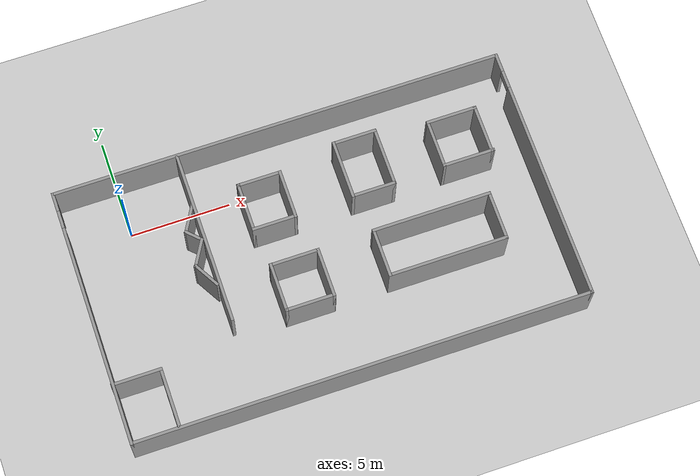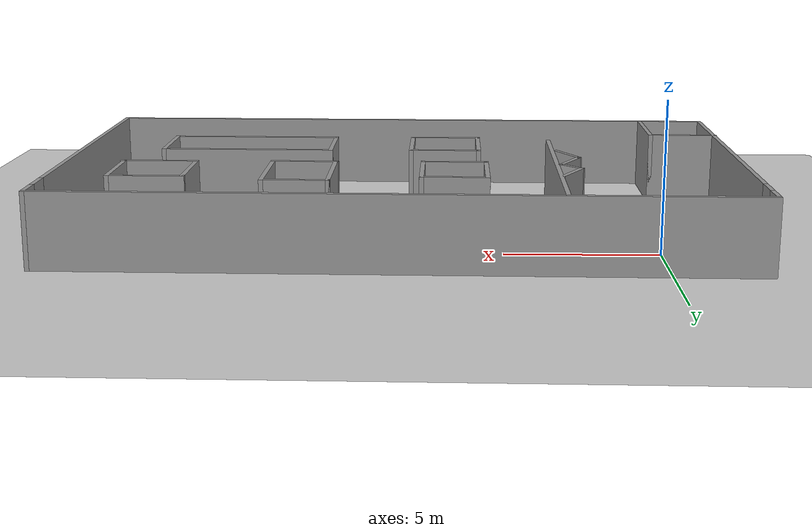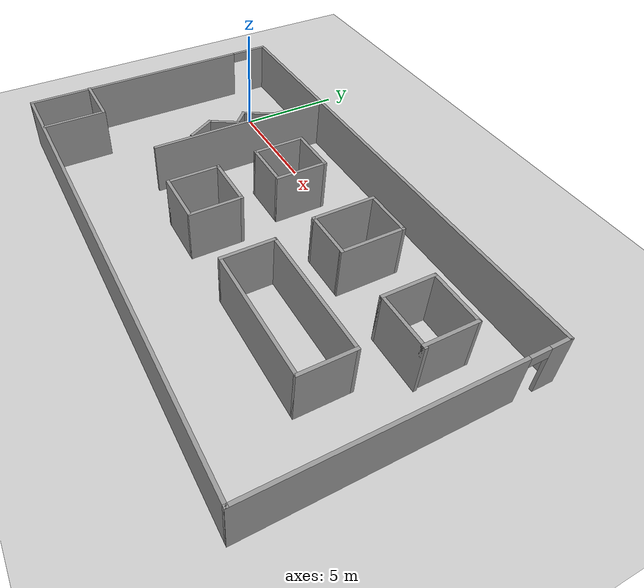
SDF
<sdf version="1.7">
 <world name="default">
  <light name="sun" type="directional">
   <pose>0 0 10 0 -0 0</pose>
   <diffuse>0.8 0.8 0.8 1</diffuse>
   <specular>0.2 0.2 0.2 1</specular>
   <attenuation>
    <range>1000</range>
    <constant>0.9</constant>
    <linear>0.01</linear>
    <quadratic>0.001</quadratic>
   </attenuation>
   <direction>-0.5 0.1 -0.9</direction>
   <spot><inner_angle>0</inner_angle><outer_angle>0</outer_angle><falloff>0</falloff></spot>
  </light>
  <model name="ground_plane">
   <static>1</static>
   <link name="link">
    <collision name="collision">
     <geometry><plane><normal>0 0 1</normal><size>100 100</size></plane></geometry>
     <surface>
      <contact><collide_bitmask>65535</collide_bitmask></contact>
      <friction><ode><mu>100</mu><mu2>50</mu2></ode></friction>
     </surface>
    </collision>
    <visual name="visual">
     <cast_shadows>0</cast_shadows>
     <geometry><plane><normal>0 0 1</normal><size>100 100</size></plane></geometry>
     <material>
      <script><uri>file://media/materials/scripts/gazebo.material</uri><name>Gazebo/Grey</name></script>
     </material>
    </visual>
   </link>
  </model>
  <gravity>0 0 -9.8</gravity>
  <magnetic_field>6e-06 2.3e-05 -4.2e-05</magnetic_field>
  <atmosphere type="adiabatic"/>
  <physics type="ode">
   <max_step_size>0.001</max_step_size>
   <real_time_factor>1</real_time_factor>
   <real_time_update_rate>1000</real_time_update_rate>
  </physics>
  <scene><ambient>0.4 0.4 0.4 1</ambient><background>0.7 0.7 0.7 1</background><shadows>1</shadows></scene>
  <spherical_coordinates>
   <surface_model>EARTH_WGS84</surface_model>
   <latitude_deg>0</latitude_deg>
   <longitude_deg>0</longitude_deg>
   <elevation>0</elevation>
   <heading_deg>0</heading_deg>
  </spherical_coordinates>
  <model name="office.world">
   <pose>8.27702 -4.10574 0 0 -0 0</pose>
   <link name="Wall_10">
    <pose>11.3152 -0 0 0 -0 1.5708</pose>
    <visual name="Wall_10_Visual_0">
     <pose>-0.938999 0 1.25 0 -0 0</pose>
     <geometry><box><size>11.122 0.15 2.5</size></box></geometry>
     <material>
      <script><uri>file://media/materials/scripts/gazebo.material</uri><name>Gazebo/Grey</name></script>
      <ambient>1 1 1 1</ambient>
     </material>
     <meta><layer>0</layer></meta>
    </visual>
    <collision name="Wall_10_Collision_0">
     <geometry><box><size>11.122 0.15 2.5</size></box></geometry>
     <pose>-0.938999 0 1.25 0 -0 0</pose>
    </collision>
    <visual name="Wall_10_Visual_1">
     <pose>6.011 0 1.25 0 -0 0</pose>
     <geometry><box><size>0.977998 0.15 2.5</size></box></geometry>
     <material>
      <script><uri>file://media/materials/scripts/gazebo.material</uri><name>Gazebo/Grey</name></script>
      <ambient>1 1 1 1</ambient>
     </material>
     <meta><layer>0</layer></meta>
    </visual>
    <collision name="Wall_10_Collision_1">
     <geometry><box><size>0.977998 0.15 2.5</size></box></geometry>
     <pose>6.011 0 1.25 0 -0 0</pose>
    </collision>
    <visual name="Wall_10_Visual_2">
     <pose>5.072 0 2.25 0 -0 0</pose>
     <geometry><box><size>0.9 0.15 0.5</size></box></geometry>
     <material>
      <script><uri>file://media/materials/scripts/gazebo.material</uri><name>Gazebo/Grey</name></script>
      <ambient>1 1 1 1</ambient>
     </material>
     <meta><layer>0</layer></meta>
    </visual>
    <collision name="Wall_10_Collision_2">
     <geometry><box><size>0.9 0.15 0.5</size></box></geometry>
     <pose>5.072 0 2.25 0 -0 0</pose>
    </collision>
   </link>
   <link name="Wall_11">
    <collision name="Wall_11_Collision">
     <geometry><box><size>22.75 0.15 2.5</size></box></geometry>
     <pose>0 0 1.25 0 -0 0</pose>
    </collision>
    <visual name="Wall_11_Visual">
     <pose>0 0 1.25 0 -0 0</pose>
     <geometry><box><size>22.75 0.15 2.5</size></box></geometry>
     <material>
      <script><uri>file://media/materials/scripts/gazebo.material</uri><name>Gazebo/Grey</name></script>
      <ambient>1 1 1 1</ambient>
     </material>
     <meta><layer>0</layer></meta>
    </visual>
    <pose>0.015161 6.425 0 0 -0 3.14159</pose>
   </link>
   <link name="Wall_15">
    <collision name="Wall_15_Collision">
     <geometry><box><size>8.75 0.15 2.5</size></box></geometry>
     <pose>0 0 1.25 0 -0 0</pose>
    </collision>
    <visual name="Wall_15_Visual">
     <pose>0 0 1.25 0 -0 0</pose>
     <geometry><box><size>8.75 0.15 2.5</size></box></geometry>
     <material>
      <script><uri>file://media/materials/scripts/gazebo.material</uri><name>Gazebo/Grey</name></script>
      <ambient>1 1 1 1</ambient>
     </material>
     <meta><layer>0</layer></meta>
    </visual>
    <pose>-5.08854 2.04563 0 0 -0 -1.5708</pose>
   </link>
   <link name="Wall_17">
    <collision name="Wall_17_Collision">
     <geometry><box><size>2.5 0.15 2.5</size></box></geometry>
     <pose>0 0 1.25 0 -0 0</pose>
    </collision>
    <visual name="Wall_17_Visual">
     <pose>0 0 1.25 0 -0 0</pose>
     <geometry><box><size>2.5 0.15 2.5</size></box></geometry>
     <material>
      <script><uri>file://media/materials/scripts/gazebo.material</uri><name>Gazebo/Grey</name></script>
      <ambient>1 1 1 1</ambient>
     </material>
     <meta><layer>0</layer></meta>
    </visual>
    <pose>-2.75356 2.83565 0 0 -0 -1.5708</pose>
   </link>
   <link name="Wall_18">
    <collision name="Wall_18_Collision">
     <geometry><box><size>2.25 0.15 2.5</size></box></geometry>
     <pose>0 0 1.25 0 -0 0</pose>
    </collision>
    <visual name="Wall_18_Visual">
     <pose>0 0 1.25 0 -0 0</pose>
     <geometry><box><size>2.25 0.15 2.5</size></box></geometry>
     <material>
      <script><uri>file://media/materials/scripts/gazebo.material</uri><name>Gazebo/Grey</name></script>
      <ambient>1 1 1 1</ambient>
     </material>
     <meta><layer>0</layer></meta>
    </visual>
    <pose>-1.70356 1.66065 0 0 -0 0</pose>
   </link>
   <link name="Wall_19">
    <collision name="Wall_19_Collision">
     <geometry><box><size>2.5 0.15 2.5</size></box></geometry>
     <pose>0 0 1.25 0 -0 0</pose>
    </collision>
    <visual name="Wall_19_Visual">
     <pose>0 0 1.25 0 -0 0</pose>
     <geometry><box><size>2.5 0.15 2.5</size></box></geometry>
     <material>
      <script><uri>file://media/materials/scripts/gazebo.material</uri><name>Gazebo/Grey</name></script>
      <ambient>1 1 1 1</ambient>
     </material>
     <meta><layer>0</layer></meta>
    </visual>
    <pose>-0.653558 2.83565 0 0 -0 1.5708</pose>
   </link>
   <link name="Wall_20">
    <collision name="Wall_20_Collision">
     <geometry><box><size>2.25 0.15 2.5</size></box></geometry>
     <pose>0 0 1.25 0 -0 0</pose>
    </collision>
    <visual name="Wall_20_Visual">
     <pose>0 0 1.25 0 -0 0</pose>
     <geometry><box><size>2.25 0.15 2.5</size></box></geometry>
     <material>
      <script><uri>file://media/materials/scripts/gazebo.material</uri><name>Gazebo/Grey</name></script>
      <ambient>1 1 1 1</ambient>
     </material>
     <meta><layer>0</layer></meta>
    </visual>
    <pose>-1.70356 4.01065 0 0 -0 3.14159</pose>
   </link>
   <link name="Wall_22">
    <collision name="Wall_22_Collision">
     <geometry><box><size>3 0.15 2.5</size></box></geometry>
     <pose>0 0 1.25 0 -0 0</pose>
    </collision>
    <visual name="Wall_22_Visual">
     <pose>0 0 1.25 0 -0 0</pose>
     <geometry><box><size>3 0.15 2.5</size></box></geometry>
     <material>
      <script><uri>file://media/materials/scripts/gazebo.material</uri><name>Gazebo/Grey</name></script>
      <ambient>1 1 1 1</ambient>
     </material>
     <meta><layer>0</layer></meta>
    </visual>
    <pose>2.27019 3.1611 0 0 -0 -1.5708</pose>
   </link>
   <link name="Wall_23">
    <collision name="Wall_23_Collision">
     <geometry><box><size>2.25 0.15 2.5</size></box></geometry>
     <pose>0 0 1.25 0 -0 0</pose>
    </collision>
    <visual name="Wall_23_Visual">
     <pose>0 0 1.25 0 -0 0</pose>
     <geometry><box><size>2.25 0.15 2.5</size></box></geometry>
     <material>
      <script><uri>file://media/materials/scripts/gazebo.material</uri><name>Gazebo/Grey</name></script>
      <ambient>1 1 1 1</ambient>
     </material>
     <meta><layer>0</layer></meta>
    </visual>
    <pose>3.32019 1.7361 0 0 -0 0</pose>
   </link>
   <link name="Wall_24">
    <collision name="Wall_24_Collision">
     <geometry><box><size>3 0.15 2.5</size></box></geometry>
     <pose>0 0 1.25 0 -0 0</pose>
    </collision>
    <visual name="Wall_24_Visual">
     <pose>0 0 1.25 0 -0 0</pose>
     <geometry><box><size>3 0.15 2.5</size></box></geometry>
     <material>
      <script><uri>file://media/materials/scripts/gazebo.material</uri><name>Gazebo/Grey</name></script>
      <ambient>1 1 1 1</ambient>
     </material>
     <meta><layer>0</layer></meta>
    </visual>
    <pose>4.37019 3.1611 0 0 -0 1.5708</pose>
   </link>
   <link name="Wall_25">
    <collision name="Wall_25_Collision">
     <geometry><box><size>2.25 0.15 2.5</size></box></geometry>
     <pose>0 0 1.25 0 -0 0</pose>
    </collision>
    <visual name="Wall_25_Visual">
     <pose>0 0 1.25 0 -0 0</pose>
     <geometry><box><size>2.25 0.15 2.5</size></box></geometry>
     <material>
      <script><uri>file://media/materials/scripts/gazebo.material</uri><name>Gazebo/Grey</name></script>
      <ambient>1 1 1 1</ambient>
     </material>
     <meta><layer>0</layer></meta>
    </visual>
    <pose>3.32019 4.5861 0 0 -0 3.14159</pose>
   </link>
   <link name="Wall_27">
    <collision name="Wall_27_Collision">
     <geometry><box><size>2.5 0.15 2.5</size></box></geometry>
     <pose>0 0 1.25 0 -0 0</pose>
    </collision>
    <visual name="Wall_27_Visual">
     <pose>0 0 1.25 0 -0 0</pose>
     <geometry><box><size>2.5 0.15 2.5</size></box></geometry>
     <material>
      <script><uri>file://media/materials/scripts/gazebo.material</uri><name>Gazebo/Grey</name></script>
      <ambient>1 1 1 1</ambient>
     </material>
     <meta><layer>0</layer></meta>
    </visual>
    <pose>6.94016 2.97716 0 0 -0 -1.5708</pose>
   </link>
   <link name="Wall_28">
    <collision name="Wall_28_Collision">
     <geometry><box><size>2.64151 0.15 2.5</size></box></geometry>
     <pose>0 0 1.25 0 -0 0</pose>
    </collision>
    <visual name="Wall_28_Visual">
     <pose>0 0 1.25 0 -0 0</pose>
     <geometry><box><size>2.64151 0.15 2.5</size></box></geometry>
     <material>
      <script><uri>file://media/materials/scripts/gazebo.material</uri><name>Gazebo/Grey</name></script>
      <ambient>1 1 1 1</ambient>
     </material>
     <meta><layer>0</layer></meta>
    </visual>
    <pose>8.18592 1.80216 0 0 -0 0</pose>
   </link>
   <link name="Wall_29">
    <collision name="Wall_29_Collision">
     <geometry><box><size>2.5 0.15 2.5</size></box></geometry>
     <pose>0 0 1.25 0 -0 0</pose>
    </collision>
    <visual name="Wall_29_Visual">
     <pose>0 0 1.25 0 -0 0</pose>
     <geometry><box><size>2.5 0.15 2.5</size></box></geometry>
     <material>
      <script><uri>file://media/materials/scripts/gazebo.material</uri><name>Gazebo/Grey</name></script>
      <ambient>1 1 1 1</ambient>
     </material>
     <meta><layer>0</layer></meta>
    </visual>
    <pose>9.36092 2.97716 0 0 -0 1.5708</pose>
   </link>
   <link name="Wall_30">
    <collision name="Wall_30_Collision">
     <geometry><box><size>2.57076 0.15 2.5</size></box></geometry>
     <pose>0 0 1.25 0 -0 0</pose>
    </collision>
    <visual name="Wall_30_Visual">
     <pose>0 0 1.25 0 -0 0</pose>
     <geometry><box><size>2.57076 0.15 2.5</size></box></geometry>
     <material>
      <script><uri>file://media/materials/scripts/gazebo.material</uri><name>Gazebo/Grey</name></script>
      <ambient>1 1 1 1</ambient>
     </material>
     <meta><layer>0</layer></meta>
    </visual>
    <pose>8.15054 4.15216 0 0 -0 3.14159</pose>
   </link>
   <link name="Wall_32">
    <collision name="Wall_32_Collision">
     <geometry><box><size>2.5 0.15 2.5</size></box></geometry>
     <pose>0 0 1.25 0 -0 0</pose>
    </collision>
    <visual name="Wall_32_Visual">
     <pose>0 0 1.25 0 -0 0</pose>
     <geometry><box><size>2.5 0.15 2.5</size></box></geometry>
     <material>
      <script><uri>file://media/materials/scripts/gazebo.material</uri><name>Gazebo/Grey</name></script>
      <ambient>1 1 1 1</ambient>
     </material>
     <meta><layer>0</layer></meta>
    </visual>
    <pose>-2.54129 -1.48053 0 0 -0 -1.5708</pose>
   </link>
   <link name="Wall_33">
    <collision name="Wall_33_Collision">
     <geometry><box><size>2.5 0.15 2.5</size></box></geometry>
     <pose>0 0 1.25 0 -0 0</pose>
    </collision>
    <visual name="Wall_33_Visual">
     <pose>0 0 1.25 0 -0 0</pose>
     <geometry><box><size>2.5 0.15 2.5</size></box></geometry>
     <material>
      <script><uri>file://media/materials/scripts/gazebo.material</uri><name>Gazebo/Grey</name></script>
      <ambient>1 1 1 1</ambient>
     </material>
     <meta><layer>0</layer></meta>
    </visual>
    <pose>-1.36629 -2.65553 0 0 -0 0</pose>
   </link>
   <link name="Wall_34">
    <collision name="Wall_34_Collision">
     <geometry><box><size>2.5 0.15 2.5</size></box></geometry>
     <pose>0 0 1.25 0 -0 0</pose>
    </collision>
    <visual name="Wall_34_Visual">
     <pose>0 0 1.25 0 -0 0</pose>
     <geometry><box><size>2.5 0.15 2.5</size></box></geometry>
     <material>
      <script><uri>file://media/materials/scripts/gazebo.material</uri><name>Gazebo/Grey</name></script>
      <ambient>1 1 1 1</ambient>
     </material>
     <meta><layer>0</layer></meta>
    </visual>
    <pose>-0.191286 -1.48053 0 0 -0 1.5708</pose>
   </link>
   <link name="Wall_35">
    <collision name="Wall_35_Collision">
     <geometry><box><size>2.5 0.15 2.5</size></box></geometry>
     <pose>0 0 1.25 0 -0 0</pose>
    </collision>
    <visual name="Wall_35_Visual">
     <pose>0 0 1.25 0 -0 0</pose>
     <geometry><box><size>2.5 0.15 2.5</size></box></geometry>
     <material>
      <script><uri>file://media/materials/scripts/gazebo.material</uri><name>Gazebo/Grey</name></script>
      <ambient>1 1 1 1</ambient>
     </material>
     <meta><layer>0</layer></meta>
    </visual>
    <pose>-1.36629 -0.305535 0 0 -0 3.14159</pose>
   </link>
   <link name="Wall_37">
    <collision name="Wall_37_Collision">
     <geometry><box><size>2.5 0.15 2.5</size></box></geometry>
     <pose>0 0 1.25 0 -0 0</pose>
    </collision>
    <visual name="Wall_37_Visual">
     <pose>0 0 1.25 0 -0 0</pose>
     <geometry><box><size>2.5 0.15 2.5</size></box></geometry>
     <material>
      <script><uri>file://media/materials/scripts/gazebo.material</uri><name>Gazebo/Grey</name></script>
      <ambient>1 1 1 1</ambient>
     </material>
     <meta><layer>0</layer></meta>
    </visual>
    <pose>2.62398 -1.40978 0 0 -0 -1.5708</pose>
   </link>
   <link name="Wall_38">
    <collision name="Wall_38_Collision">
     <geometry><box><size>6 0.15 2.5</size></box></geometry>
     <pose>0 0 1.25 0 -0 0</pose>
    </collision>
    <visual name="Wall_38_Visual">
     <pose>0 0 1.25 0 -0 0</pose>
     <geometry><box><size>6 0.15 2.5</size></box></geometry>
     <material>
      <script><uri>file://media/materials/scripts/gazebo.material</uri><name>Gazebo/Grey</name></script>
      <ambient>1 1 1 1</ambient>
     </material>
     <meta><layer>0</layer></meta>
    </visual>
    <pose>5.54898 -2.58478 0 0 -0 0</pose>
   </link>
   <link name="Wall_39">
    <collision name="Wall_39_Collision">
     <geometry><box><size>2.5 0.15 2.5</size></box></geometry>
     <pose>0 0 1.25 0 -0 0</pose>
    </collision>
    <visual name="Wall_39_Visual">
     <pose>0 0 1.25 0 -0 0</pose>
     <geometry><box><size>2.5 0.15 2.5</size></box></geometry>
     <material>
      <script><uri>file://media/materials/scripts/gazebo.material</uri><name>Gazebo/Grey</name></script>
      <ambient>1 1 1 1</ambient>
     </material>
     <meta><layer>0</layer></meta>
    </visual>
    <pose>8.47398 -1.40978 0 0 -0 1.5708</pose>
   </link>
   <link name="Wall_40">
    <collision name="Wall_40_Collision">
     <geometry><box><size>6 0.15 2.5</size></box></geometry>
     <pose>0 0 1.25 0 -0 0</pose>
    </collision>
    <visual name="Wall_40_Visual">
     <pose>0 0 1.25 0 -0 0</pose>
     <geometry><box><size>6 0.15 2.5</size></box></geometry>
     <material>
      <script><uri>file://media/materials/scripts/gazebo.material</uri><name>Gazebo/Grey</name></script>
      <ambient>1 1 1 1</ambient>
     </material>
     <meta><layer>0</layer></meta>
    </visual>
    <pose>5.54898 -0.234777 0 0 -0 3.14159</pose>
   </link>
   <link name="Wall_42">
    <collision name="Wall_42_Collision">
     <geometry><box><size>1.5 0.15 2.5</size></box></geometry>
     <pose>0 0 1.25 0 -0 0</pose>
    </collision>
    <visual name="Wall_42_Visual">
     <pose>0 0 1.25 0 -0 0</pose>
     <geometry><box><size>1.5 0.15 2.5</size></box></geometry>
     <material>
      <script><uri>file://media/materials/scripts/gazebo.material</uri><name>Gazebo/Grey</name></script>
      <ambient>1 1 1 1</ambient>
     </material>
     <meta><layer>0</layer></meta>
    </visual>
    <pose>-5.4968 3.14305 0 0 -0 -2.0944</pose>
   </link>
   <link name="Wall_43">
    <collision name="Wall_43_Collision">
     <geometry><box><size>1 0.15 2.5</size></box></geometry>
     <pose>0 0 1.25 0 -0 0</pose>
    </collision>
    <visual name="Wall_43_Visual">
     <pose>0 0 1.25 0 -0 0</pose>
     <geometry><box><size>1 0.15 2.5</size></box></geometry>
     <material>
      <script><uri>file://media/materials/scripts/gazebo.material</uri><name>Gazebo/Grey</name></script>
      <ambient>1 1 1 1</ambient>
     </material>
     <meta><layer>0</layer></meta>
    </visual>
    <pose>-5.53378 2.25796 0 0 -0 -0.785398</pose>
   </link>
   <link name="Wall_44">
    <collision name="Wall_44_Collision">
     <geometry><box><size>1.5 0.15 2.5</size></box></geometry>
     <pose>0 0 1.25 0 -0 0</pose>
    </collision>
    <visual name="Wall_44_Visual">
     <pose>0 0 1.25 0 -0 0</pose>
     <geometry><box><size>1.5 0.15 2.5</size></box></geometry>
     <material>
      <script><uri>file://media/materials/scripts/gazebo.material</uri><name>Gazebo/Grey</name></script>
      <ambient>1 1 1 1</ambient>
     </material>
     <meta><layer>0</layer></meta>
    </visual>
    <pose>-5.57076 1.37288 0 0 -0 -2.0944</pose>
   </link>
   <link name="Wall_45">
    <collision name="Wall_45_Collision">
     <geometry><box><size>1.5 0.15 2.5</size></box></geometry>
     <pose>0 0 1.25 0 -0 0</pose>
    </collision>
    <visual name="Wall_45_Visual">
     <pose>0 0 1.25 0 -0 0</pose>
     <geometry><box><size>1.5 0.15 2.5</size></box></geometry>
     <material>
      <script><uri>file://media/materials/scripts/gazebo.material</uri><name>Gazebo/Grey</name></script>
      <ambient>1 1 1 1</ambient>
     </material>
     <meta><layer>0</layer></meta>
    </visual>
    <pose>-5.57076 0.203741 0 0 -0 -1.0472</pose>
   </link>
   <link name="Wall_47">
    <collision name="Wall_47_Collision">
     <geometry><box><size>2.5 0.15 2.5</size></box></geometry>
     <pose>0 0 1.25 0 -0 0</pose>
    </collision>
    <visual name="Wall_47_Visual">
     <pose>0 0 1.25 0 -0 0</pose>
     <geometry><box><size>2.5 0.15 2.5</size></box></geometry>
     <material>
      <script><uri>file://media/materials/scripts/gazebo.material</uri><name>Gazebo/Grey</name></script>
      <ambient>1 1 1 1</ambient>
     </material>
     <meta><layer>0</layer></meta>
    </visual>
    <pose>-10.1402 -3.4896 0 0 -0 0</pose>
   </link>
   <link name="Wall_48">
    <collision name="Wall_48_Collision">
     <geometry><box><size>3 0.15 2.5</size></box></geometry>
     <pose>0 0 1.25 0 -0 0</pose>
    </collision>
    <visual name="Wall_48_Visual">
     <pose>0 0 1.25 0 -0 0</pose>
     <geometry><box><size>3 0.15 2.5</size></box></geometry>
     <material>
      <script><uri>file://media/materials/scripts/gazebo.material</uri><name>Gazebo/Grey</name></script>
      <ambient>1 1 1 1</ambient>
     </material>
     <meta><layer>0</layer></meta>
    </visual>
    <pose>-8.96516 -4.9146 0 0 -0 -1.5708</pose>
   </link>
   <link name="Wall_8">
    <pose>-11.2848 -0 0 0 -0 -1.5708</pose>
    <visual name="Wall_8_Visual_0">
     <pose>-6.011 0 1.25 0 -0 0</pose>
     <geometry><box><size>0.977998 0.15 2.5</size></box></geometry>
     <material>
      <script><uri>file://media/materials/scripts/gazebo.material</uri><name>Gazebo/Grey</name></script>
      <ambient>1 1 1 1</ambient>
     </material>
     <meta><layer>0</layer></meta>
    </visual>
    <collision name="Wall_8_Collision_0">
     <geometry><box><size>0.977998 0.15 2.5</size></box></geometry>
     <pose>-6.011 0 1.25 0 -0 0</pose>
    </collision>
    <visual name="Wall_8_Visual_1">
     <pose>0.938999 0 1.25 0 -0 0</pose>
     <geometry><box><size>11.122 0.15 2.5</size></box></geometry>
     <material>
      <script><uri>file://media/materials/scripts/gazebo.material</uri><name>Gazebo/Grey</name></script>
      <ambient>1 1 1 1</ambient>
     </material>
     <meta><layer>0</layer></meta>
    </visual>
    <collision name="Wall_8_Collision_1">
     <geometry><box><size>11.122 0.15 2.5</size></box></geometry>
     <pose>0.938999 0 1.25 0 -0 0</pose>
    </collision>
    <visual name="Wall_8_Visual_2">
     <pose>-5.072 0 2.25 0 -0 0</pose>
     <geometry><box><size>0.9 0.15 0.5</size></box></geometry>
     <material>
      <script><uri>file://media/materials/scripts/gazebo.material</uri><name>Gazebo/Grey</name></script>
      <ambient>1 1 1 1</ambient>
     </material>
     <meta><layer>0</layer></meta>
    </visual>
    <collision name="Wall_8_Collision_2">
     <geometry><box><size>0.9 0.15 0.5</size></box></geometry>
     <pose>-5.072 0 2.25 0 -0 0</pose>
    </collision>
   </link>
   <link name="Wall_9">
    <collision name="Wall_9_Collision">
     <geometry><box><size>22.75 0.15 2.5</size></box></geometry>
     <pose>0 0 1.25 0 -0 0</pose>
    </collision>
    <visual name="Wall_9_Visual">
     <pose>0 0 1.25 0 -0 0</pose>
     <geometry><box><size>22.75 0.15 2.5</size></box></geometry>
     <material>
      <script><uri>file://media/materials/scripts/gazebo.material</uri><name>Gazebo/Grey</name></script>
      <ambient>1 1 1 1</ambient>
     </material>
     <meta><layer>0</layer></meta>
    </visual>
    <pose>0.015161 -6.425 0 0 -0 0</pose>
   </link>
   <static>1</static>
  </model>
 </world>
</sdf>
